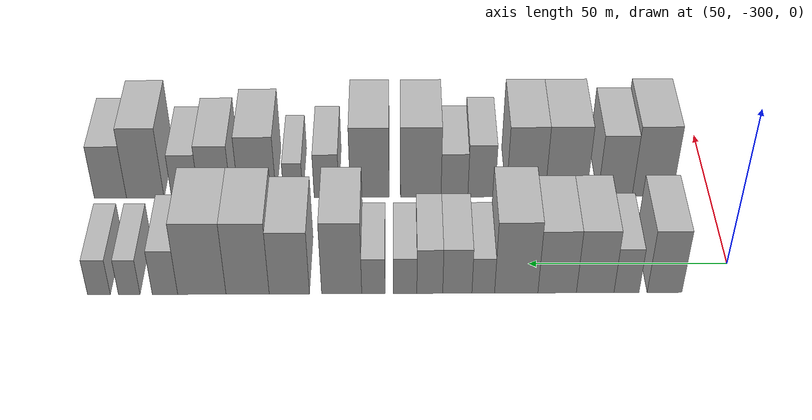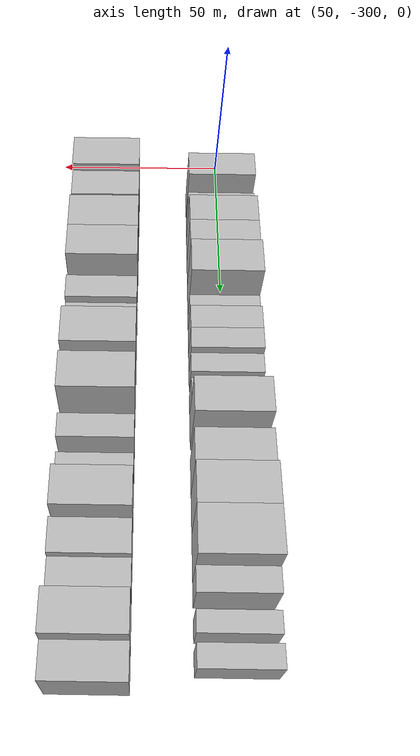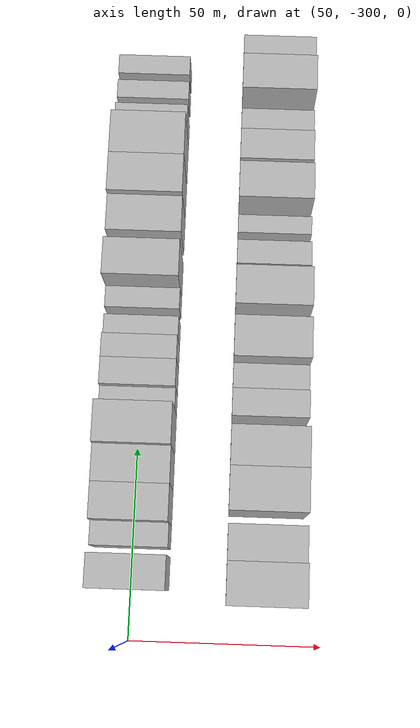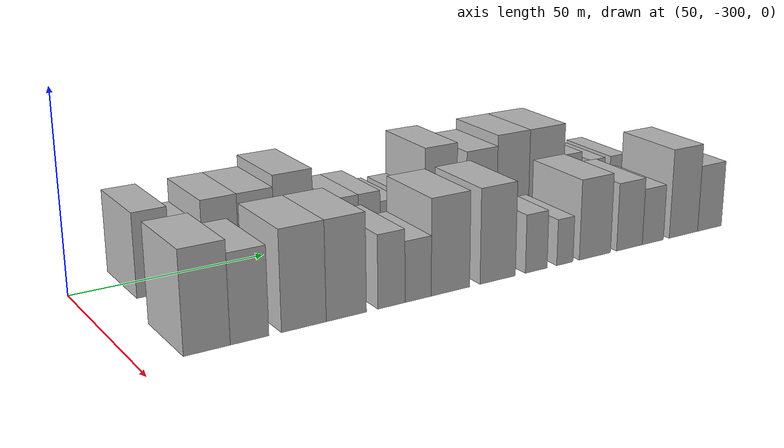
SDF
<sdf version="1.6">
 <world name="default">
  <model name="building_1">
   <static>1</static>
   <pose>50.0000 -282.7054 0 0.000000 0.000000 0.000000</pose>
   <link name="link">
    <pose>0 0 10.50 0 0 0</pose>
    <collision name="collision"><geometry><box><size>20.0000 8.5893 21.0000</size></box></geometry></collision>
    <visual name="visual">
     <cast_shadows>0</cast_shadows>
     <geometry><box><size>20.0000 8.5893 21.0000</size></box></geometry>
     <material>
      <script>
       <uri>model://HANNAS_wall/materials/scripts</uri>
       <uri>model://HANNAS_wall/materials/textures</uri>
       <name>vrc/HANNAS_wall</name>
      </script>
     </material>
    </visual>
   </link>
  </model>
  <model name="building_2">
   <static>1</static>
   <pose>50.0000 -273.3137 0 0.000000 0.000000 0.000000</pose>
   <link name="link">
    <pose>0 0 7.50 0 0 0</pose>
    <collision name="collision"><geometry><box><size>20.0000 6.1940 15.0000</size></box></geometry></collision>
    <visual name="visual">
     <cast_shadows>0</cast_shadows>
     <geometry><box><size>20.0000 6.1940 15.0000</size></box></geometry>
     <material>
      <script>
       <uri>model://HANNAS_wall/materials/scripts</uri>
       <uri>model://HANNAS_wall/materials/textures</uri>
       <name>vrc/HANNAS_wall</name>
      </script>
     </material>
    </visual>
   </link>
  </model>
  <model name="building_3">
   <static>1</static>
   <pose>50.0000 -265.5735 0 0.000000 0.000000 0.000000</pose>
   <link name="link">
    <pose>0 0 10.50 0 0 0</pose>
    <collision name="collision"><geometry><box><size>20.0000 9.2864 21.0000</size></box></geometry></collision>
    <visual name="visual">
     <cast_shadows>0</cast_shadows>
     <geometry><box><size>20.0000 9.2864 21.0000</size></box></geometry>
     <material>
      <script>
       <uri>model://HANNAS_wall/materials/scripts</uri>
       <uri>model://HANNAS_wall/materials/textures</uri>
       <name>vrc/HANNAS_wall</name>
      </script>
     </material>
    </visual>
   </link>
  </model>
  <model name="building_4">
   <static>1</static>
   <pose>50.0000 -256.1749 0 0.000000 0.000000 0.000000</pose>
   <link name="link">
    <pose>0 0 10.50 0 0 0</pose>
    <collision name="collision"><geometry><box><size>20.0000 9.5108 21.0000</size></box></geometry></collision>
    <visual name="visual">
     <cast_shadows>0</cast_shadows>
     <geometry><box><size>20.0000 9.5108 21.0000</size></box></geometry>
     <material>
      <script>
       <uri>model://HANNAS_wall/materials/scripts</uri>
       <uri>model://HANNAS_wall/materials/textures</uri>
       <name>vrc/HANNAS_wall</name>
      </script>
     </material>
    </visual>
   </link>
  </model>
  <model name="building_5">
   <static>1</static>
   <pose>50.0000 -246.0718 0 0.000000 0.000000 0.000000</pose>
   <link name="link">
    <pose>0 0 12.00 0 0 0</pose>
    <collision name="collision"><geometry><box><size>20.0000 10.6954 24.0000</size></box></geometry></collision>
    <visual name="visual">
     <cast_shadows>0</cast_shadows>
     <geometry><box><size>20.0000 10.6954 24.0000</size></box></geometry>
     <material>
      <script>
       <uri>model://HANNAS_wall/materials/scripts</uri>
       <uri>model://HANNAS_wall/materials/textures</uri>
       <name>vrc/HANNAS_wall</name>
      </script>
     </material>
    </visual>
   </link>
  </model>
  <model name="building_6">
   <static>1</static>
   <pose>50.0000 -237.9298 0 0.000000 0.000000 0.000000</pose>
   <link name="link">
    <pose>0 0 6.00 0 0 0</pose>
    <collision name="collision"><geometry><box><size>20.0000 5.5887 12.0000</size></box></geometry></collision>
    <visual name="visual">
     <cast_shadows>0</cast_shadows>
     <geometry><box><size>20.0000 5.5887 12.0000</size></box></geometry>
     <material>
      <script>
       <uri>model://HANNAS_wall/materials/scripts</uri>
       <uri>model://HANNAS_wall/materials/textures</uri>
       <name>vrc/HANNAS_wall</name>
      </script>
     </material>
    </visual>
   </link>
  </model>
  <model name="building_7">
   <static>1</static>
   <pose>50.0000 -231.5289 0 0.000000 0.000000 0.000000</pose>
   <link name="link">
    <pose>0 0 7.50 0 0 0</pose>
    <collision name="collision"><geometry><box><size>20.0000 7.2132 15.0000</size></box></geometry></collision>
    <visual name="visual">
     <cast_shadows>0</cast_shadows>
     <geometry><box><size>20.0000 7.2132 15.0000</size></box></geometry>
     <material>
      <script>
       <uri>model://HANNAS_wall/materials/scripts</uri>
       <uri>model://HANNAS_wall/materials/textures</uri>
       <name>vrc/HANNAS_wall</name>
      </script>
     </material>
    </visual>
   </link>
  </model>
  <model name="building_8">
   <static>1</static>
   <pose>50.0000 -224.7328 0 0.000000 0.000000 0.000000</pose>
   <link name="link">
    <pose>0 0 7.50 0 0 0</pose>
    <collision name="collision"><geometry><box><size>20.0000 6.3789 15.0000</size></box></geometry></collision>
    <visual name="visual">
     <cast_shadows>0</cast_shadows>
     <geometry><box><size>20.0000 6.3789 15.0000</size></box></geometry>
     <material>
      <script>
       <uri>model://HANNAS_wall/materials/scripts</uri>
       <uri>model://HANNAS_wall/materials/textures</uri>
       <name>vrc/HANNAS_wall</name>
      </script>
     </material>
    </visual>
   </link>
  </model>
  <model name="building_9">
   <static>1</static>
   <pose>50.0000 -218.6347 0 0.000000 0.000000 0.000000</pose>
   <link name="link">
    <pose>0 0 6.00 0 0 0</pose>
    <collision name="collision"><geometry><box><size>20.0000 5.8174 12.0000</size></box></geometry></collision>
    <visual name="visual">
     <cast_shadows>0</cast_shadows>
     <geometry><box><size>20.0000 5.8174 12.0000</size></box></geometry>
     <material>
      <script>
       <uri>model://HANNAS_wall/materials/scripts</uri>
       <uri>model://HANNAS_wall/materials/textures</uri>
       <name>vrc/HANNAS_wall</name>
      </script>
     </material>
    </visual>
   </link>
  </model>
  <model name="building_10">
   <static>1</static>
   <pose>50.0000 -210.8293 0 0.000000 0.000000 0.000000</pose>
   <link name="link">
    <pose>0 0 6.00 0 0 0</pose>
    <collision name="collision"><geometry><box><size>20.0000 5.7934 12.0000</size></box></geometry></collision>
    <visual name="visual">
     <cast_shadows>0</cast_shadows>
     <geometry><box><size>20.0000 5.7934 12.0000</size></box></geometry>
     <material>
      <script>
       <uri>model://HANNAS_wall/materials/scripts</uri>
       <uri>model://HANNAS_wall/materials/textures</uri>
       <name>vrc/HANNAS_wall</name>
      </script>
     </material>
    </visual>
   </link>
  </model>
  <model name="building_11">
   <static>1</static>
   <pose>50.0000 -202.9933 0 0.000000 0.000000 0.000000</pose>
   <link name="link">
    <pose>0 0 12.00 0 0 0</pose>
    <collision name="collision"><geometry><box><size>20.0000 9.8786 24.0000</size></box></geometry></collision>
    <visual name="visual">
     <cast_shadows>0</cast_shadows>
     <geometry><box><size>20.0000 9.8786 24.0000</size></box></geometry>
     <material>
      <script>
       <uri>model://HANNAS_wall/materials/scripts</uri>
       <uri>model://HANNAS_wall/materials/textures</uri>
       <name>vrc/HANNAS_wall</name>
      </script>
     </material>
    </visual>
   </link>
  </model>
  <model name="building_12">
   <static>1</static>
   <pose>50.0000 -190.0922 0 0.000000 0.000000 0.000000</pose>
   <link name="link">
    <pose>0 0 10.50 0 0 0</pose>
    <collision name="collision"><geometry><box><size>20.0000 9.9234 21.0000</size></box></geometry></collision>
    <visual name="visual">
     <cast_shadows>0</cast_shadows>
     <geometry><box><size>20.0000 9.9234 21.0000</size></box></geometry>
     <material>
      <script>
       <uri>model://HANNAS_wall/materials/scripts</uri>
       <uri>model://HANNAS_wall/materials/textures</uri>
       <name>vrc/HANNAS_wall</name>
      </script>
     </material>
    </visual>
   </link>
  </model>
  <model name="building_13">
   <static>1</static>
   <pose>50.0000 -179.8102 0 0.000000 0.000000 0.000000</pose>
   <link name="link">
    <pose>0 0 12.00 0 0 0</pose>
    <collision name="collision"><geometry><box><size>20.0000 10.6407 24.0000</size></box></geometry></collision>
    <visual name="visual">
     <cast_shadows>0</cast_shadows>
     <geometry><box><size>20.0000 10.6407 24.0000</size></box></geometry>
     <material>
      <script>
       <uri>model://HANNAS_wall/materials/scripts</uri>
       <uri>model://HANNAS_wall/materials/textures</uri>
       <name>vrc/HANNAS_wall</name>
      </script>
     </material>
    </visual>
   </link>
  </model>
  <model name="building_14">
   <static>1</static>
   <pose>50.0000 -168.5287 0 0.000000 0.000000 0.000000</pose>
   <link name="link">
    <pose>0 0 12.00 0 0 0</pose>
    <collision name="collision"><geometry><box><size>20.0000 11.9223 24.0000</size></box></geometry></collision>
    <visual name="visual">
     <cast_shadows>0</cast_shadows>
     <geometry><box><size>20.0000 11.9223 24.0000</size></box></geometry>
     <material>
      <script>
       <uri>model://HANNAS_wall/materials/scripts</uri>
       <uri>model://HANNAS_wall/materials/textures</uri>
       <name>vrc/HANNAS_wall</name>
      </script>
     </material>
    </visual>
   </link>
  </model>
  <model name="building_15">
   <static>1</static>
   <pose>50.0000 -159.4381 0 0.000000 0.000000 0.000000</pose>
   <link name="link">
    <pose>0 0 7.50 0 0 0</pose>
    <collision name="collision"><geometry><box><size>20.0000 6.2589 15.0000</size></box></geometry></collision>
    <visual name="visual">
     <cast_shadows>0</cast_shadows>
     <geometry><box><size>20.0000 6.2589 15.0000</size></box></geometry>
     <material>
      <script>
       <uri>model://HANNAS_wall/materials/scripts</uri>
       <uri>model://HANNAS_wall/materials/textures</uri>
       <name>vrc/HANNAS_wall</name>
      </script>
     </material>
    </visual>
   </link>
  </model>
  <model name="building_16">
   <static>1</static>
   <pose>50.0000 -150.6454 0 0.000000 0.000000 0.000000</pose>
   <link name="link">
    <pose>0 0 6.00 0 0 0</pose>
    <collision name="collision"><geometry><box><size>20.0000 5.3266 12.0000</size></box></geometry></collision>
    <visual name="visual">
     <cast_shadows>0</cast_shadows>
     <geometry><box><size>20.0000 5.3266 12.0000</size></box></geometry>
     <material>
      <script>
       <uri>model://HANNAS_wall/materials/scripts</uri>
       <uri>model://HANNAS_wall/materials/textures</uri>
       <name>vrc/HANNAS_wall</name>
      </script>
     </material>
    </visual>
   </link>
  </model>
  <model name="building_17">
   <static>1</static>
   <pose>50.0000 -143.1779 0 0.000000 0.000000 0.000000</pose>
   <link name="link">
    <pose>0 0 6.00 0 0 0</pose>
    <collision name="collision"><geometry><box><size>20.0000 5.6084 12.0000</size></box></geometry></collision>
    <visual name="visual">
     <cast_shadows>0</cast_shadows>
     <geometry><box><size>20.0000 5.6084 12.0000</size></box></geometry>
     <material>
      <script>
       <uri>model://HANNAS_wall/materials/scripts</uri>
       <uri>model://HANNAS_wall/materials/textures</uri>
       <name>vrc/HANNAS_wall</name>
      </script>
     </material>
    </visual>
   </link>
  </model>
  <model name="building_67">
   <static>1</static>
   <pose>85.0000 -284.6510 0 0.000000 0.000000 0.000000</pose>
   <link name="link">
    <pose>0 0 12.00 0 0 0</pose>
    <collision name="collision"><geometry><box><size>20.0000 10.6979 24.0000</size></box></geometry></collision>
    <visual name="visual">
     <cast_shadows>0</cast_shadows>
     <geometry><box><size>20.0000 10.6979 24.0000</size></box></geometry>
     <material>
      <script>
       <uri>model://HANNAS_wall/materials/scripts</uri>
       <uri>model://HANNAS_wall/materials/textures</uri>
       <name>vrc/HANNAS_wall</name>
      </script>
     </material>
    </visual>
   </link>
  </model>
  <model name="building_68">
   <static>1</static>
   <pose>85.0000 -274.7380 0 0.000000 0.000000 0.000000</pose>
   <link name="link">
    <pose>0 0 10.50 0 0 0</pose>
    <collision name="collision"><geometry><box><size>20.0000 9.1280 21.0000</size></box></geometry></collision>
    <visual name="visual">
     <cast_shadows>0</cast_shadows>
     <geometry><box><size>20.0000 9.1280 21.0000</size></box></geometry>
     <material>
      <script>
       <uri>model://HANNAS_wall/materials/scripts</uri>
       <uri>model://HANNAS_wall/materials/textures</uri>
       <name>vrc/HANNAS_wall</name>
      </script>
     </material>
    </visual>
   </link>
  </model>
  <model name="building_69">
   <static>1</static>
   <pose>85.0000 -261.6400 0 0.000000 0.000000 0.000000</pose>
   <link name="link">
    <pose>0 0 12.00 0 0 0</pose>
    <collision name="collision"><geometry><box><size>20.0000 11.0681 24.0000</size></box></geometry></collision>
    <visual name="visual">
     <cast_shadows>0</cast_shadows>
     <geometry><box><size>20.0000 11.0681 24.0000</size></box></geometry>
     <material>
      <script>
       <uri>model://HANNAS_wall/materials/scripts</uri>
       <uri>model://HANNAS_wall/materials/textures</uri>
       <name>vrc/HANNAS_wall</name>
      </script>
     </material>
    </visual>
   </link>
  </model>
  <model name="building_70">
   <static>1</static>
   <pose>85.0000 -250.9583 0 0.000000 0.000000 0.000000</pose>
   <link name="link">
    <pose>0 0 12.00 0 0 0</pose>
    <collision name="collision"><geometry><box><size>20.0000 10.2953 24.0000</size></box></geometry></collision>
    <visual name="visual">
     <cast_shadows>0</cast_shadows>
     <geometry><box><size>20.0000 10.2953 24.0000</size></box></geometry>
     <material>
      <script>
       <uri>model://HANNAS_wall/materials/scripts</uri>
       <uri>model://HANNAS_wall/materials/textures</uri>
       <name>vrc/HANNAS_wall</name>
      </script>
     </material>
    </visual>
   </link>
  </model>
  <model name="building_71">
   <static>1</static>
   <pose>85.0000 -239.1912 0 0.000000 0.000000 0.000000</pose>
   <link name="link">
    <pose>0 0 9.00 0 0 0</pose>
    <collision name="collision"><geometry><box><size>20.0000 7.2389 18.0000</size></box></geometry></collision>
    <visual name="visual">
     <cast_shadows>0</cast_shadows>
     <geometry><box><size>20.0000 7.2389 18.0000</size></box></geometry>
     <material>
      <script>
       <uri>model://HANNAS_wall/materials/scripts</uri>
       <uri>model://HANNAS_wall/materials/textures</uri>
       <name>vrc/HANNAS_wall</name>
      </script>
     </material>
    </visual>
   </link>
  </model>
  <model name="building_72">
   <static>1</static>
   <pose>85.0000 -231.9990 0 0.000000 0.000000 0.000000</pose>
   <link name="link">
    <pose>0 0 7.50 0 0 0</pose>
    <collision name="collision"><geometry><box><size>20.0000 7.1454 15.0000</size></box></geometry></collision>
    <visual name="visual">
     <cast_shadows>0</cast_shadows>
     <geometry><box><size>20.0000 7.1454 15.0000</size></box></geometry>
     <material>
      <script>
       <uri>model://HANNAS_wall/materials/scripts</uri>
       <uri>model://HANNAS_wall/materials/textures</uri>
       <name>vrc/HANNAS_wall</name>
      </script>
     </material>
    </visual>
   </link>
  </model>
  <model name="building_73">
   <static>1</static>
   <pose>85.0000 -223.0458 0 0.000000 0.000000 0.000000</pose>
   <link name="link">
    <pose>0 0 12.00 0 0 0</pose>
    <collision name="collision"><geometry><box><size>20.0000 10.7611 24.0000</size></box></geometry></collision>
    <visual name="visual">
     <cast_shadows>0</cast_shadows>
     <geometry><box><size>20.0000 10.7611 24.0000</size></box></geometry>
     <material>
      <script>
       <uri>model://HANNAS_wall/materials/scripts</uri>
       <uri>model://HANNAS_wall/materials/textures</uri>
       <name>vrc/HANNAS_wall</name>
      </script>
     </material>
    </visual>
   </link>
  </model>
  <model name="building_74">
   <static>1</static>
   <pose>85.0000 -209.4901 0 0.000000 0.000000 0.000000</pose>
   <link name="link">
    <pose>0 0 12.00 0 0 0</pose>
    <collision name="collision"><geometry><box><size>20.0000 10.3504 24.0000</size></box></geometry></collision>
    <visual name="visual">
     <cast_shadows>0</cast_shadows>
     <geometry><box><size>20.0000 10.3504 24.0000</size></box></geometry>
     <material>
      <script>
       <uri>model://HANNAS_wall/materials/scripts</uri>
       <uri>model://HANNAS_wall/materials/textures</uri>
       <name>vrc/HANNAS_wall</name>
      </script>
     </material>
    </visual>
   </link>
  </model>
  <model name="building_75">
   <static>1</static>
   <pose>85.0000 -198.0208 0 0.000000 0.000000 0.000000</pose>
   <link name="link">
    <pose>0 0 7.50 0 0 0</pose>
    <collision name="collision"><geometry><box><size>20.0000 6.5882 15.0000</size></box></geometry></collision>
    <visual name="visual">
     <cast_shadows>0</cast_shadows>
     <geometry><box><size>20.0000 6.5882 15.0000</size></box></geometry>
     <material>
      <script>
       <uri>model://HANNAS_wall/materials/scripts</uri>
       <uri>model://HANNAS_wall/materials/textures</uri>
       <name>vrc/HANNAS_wall</name>
      </script>
     </material>
    </visual>
   </link>
  </model>
  <model name="building_76">
   <static>1</static>
   <pose>85.0000 -189.1883 0 0.000000 0.000000 0.000000</pose>
   <link name="link">
    <pose>0 0 6.00 0 0 0</pose>
    <collision name="collision"><geometry><box><size>20.0000 5.0768 12.0000</size></box></geometry></collision>
    <visual name="visual">
     <cast_shadows>0</cast_shadows>
     <geometry><box><size>20.0000 5.0768 12.0000</size></box></geometry>
     <material>
      <script>
       <uri>model://HANNAS_wall/materials/scripts</uri>
       <uri>model://HANNAS_wall/materials/textures</uri>
       <name>vrc/HANNAS_wall</name>
      </script>
     </material>
    </visual>
   </link>
  </model>
  <model name="building_77">
   <static>1</static>
   <pose>85.0000 -179.6312 0 0.000000 0.000000 0.000000</pose>
   <link name="link">
    <pose>0 0 10.50 0 0 0</pose>
    <collision name="collision"><geometry><box><size>20.0000 10.0374 21.0000</size></box></geometry></collision>
    <visual name="visual">
     <cast_shadows>0</cast_shadows>
     <geometry><box><size>20.0000 10.0374 21.0000</size></box></geometry>
     <material>
      <script>
       <uri>model://HANNAS_wall/materials/scripts</uri>
       <uri>model://HANNAS_wall/materials/textures</uri>
       <name>vrc/HANNAS_wall</name>
      </script>
     </material>
    </visual>
   </link>
  </model>
  <model name="building_78">
   <static>1</static>
   <pose>85.0000 -168.3327 0 0.000000 0.000000 0.000000</pose>
   <link name="link">
    <pose>0 0 9.00 0 0 0</pose>
    <collision name="collision"><geometry><box><size>20.0000 8.5597 18.0000</size></box></geometry></collision>
    <visual name="visual">
     <cast_shadows>0</cast_shadows>
     <geometry><box><size>20.0000 8.5597 18.0000</size></box></geometry>
     <material>
      <script>
       <uri>model://HANNAS_wall/materials/scripts</uri>
       <uri>model://HANNAS_wall/materials/textures</uri>
       <name>vrc/HANNAS_wall</name>
      </script>
     </material>
    </visual>
   </link>
  </model>
  <model name="building_79">
   <static>1</static>
   <pose>85.0000 -160.4496 0 0.000000 0.000000 0.000000</pose>
   <link name="link">
    <pose>0 0 7.50 0 0 0</pose>
    <collision name="collision"><geometry><box><size>20.0000 7.2064 15.0000</size></box></geometry></collision>
    <visual name="visual">
     <cast_shadows>0</cast_shadows>
     <geometry><box><size>20.0000 7.2064 15.0000</size></box></geometry>
     <material>
      <script>
       <uri>model://HANNAS_wall/materials/scripts</uri>
       <uri>model://HANNAS_wall/materials/textures</uri>
       <name>vrc/HANNAS_wall</name>
      </script>
     </material>
    </visual>
   </link>
  </model>
  <model name="building_80">
   <static>1</static>
   <pose>85.0000 -149.8547 0 0.000000 0.000000 0.000000</pose>
   <link name="link">
    <pose>0 0 12.00 0 0 0</pose>
    <collision name="collision"><geometry><box><size>20.0000 9.9834 24.0000</size></box></geometry></collision>
    <visual name="visual">
     <cast_shadows>0</cast_shadows>
     <geometry><box><size>20.0000 9.9834 24.0000</size></box></geometry>
     <material>
      <script>
       <uri>model://HANNAS_wall/materials/scripts</uri>
       <uri>model://HANNAS_wall/materials/textures</uri>
       <name>vrc/HANNAS_wall</name>
      </script>
     </material>
    </visual>
   </link>
  </model>
  <model name="building_81">
   <static>1</static>
   <pose>85.0000 -140.5931 0 0.000000 0.000000 0.000000</pose>
   <link name="link">
    <pose>0 0 9.00 0 0 0</pose>
    <collision name="collision"><geometry><box><size>20.0000 8.5397 18.0000</size></box></geometry></collision>
    <visual name="visual">
     <cast_shadows>0</cast_shadows>
     <geometry><box><size>20.0000 8.5397 18.0000</size></box></geometry>
     <material>
      <script>
       <uri>model://HANNAS_wall/materials/scripts</uri>
       <uri>model://HANNAS_wall/materials/textures</uri>
       <name>vrc/HANNAS_wall</name>
      </script>
     </material>
    </visual>
   </link>
  </model>
 </world>
</sdf>
